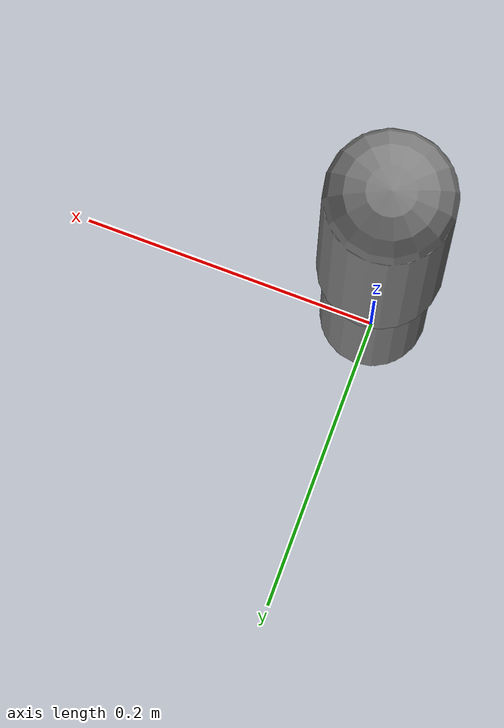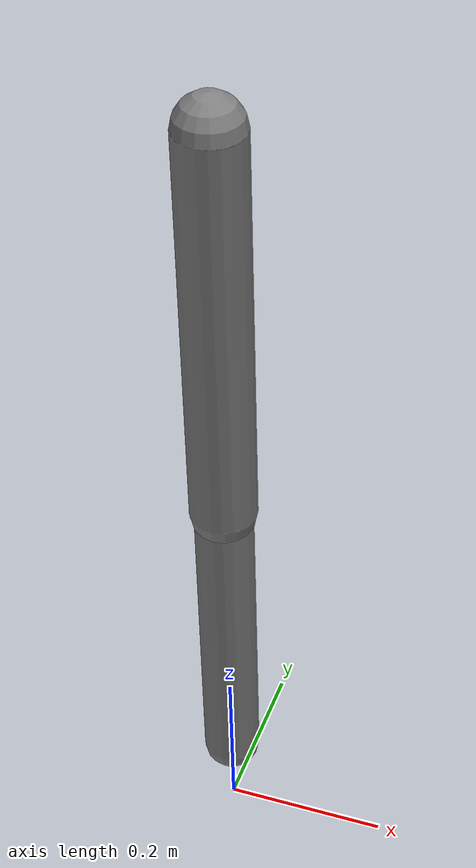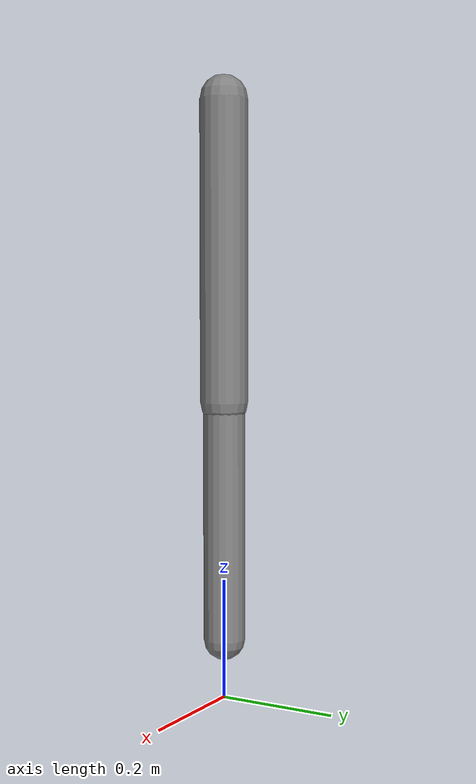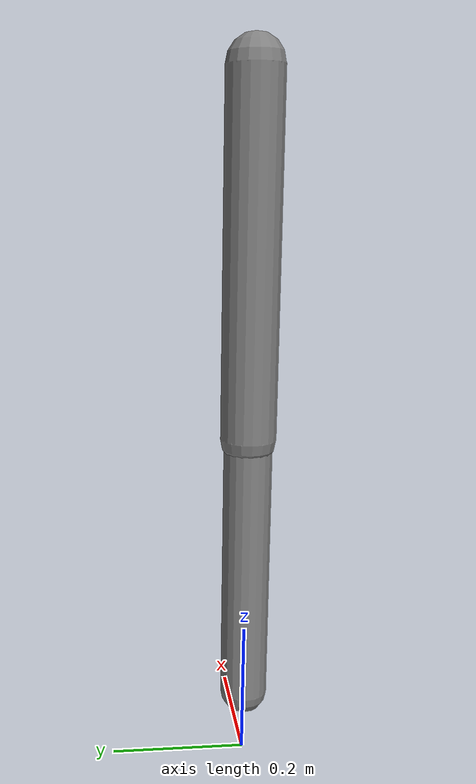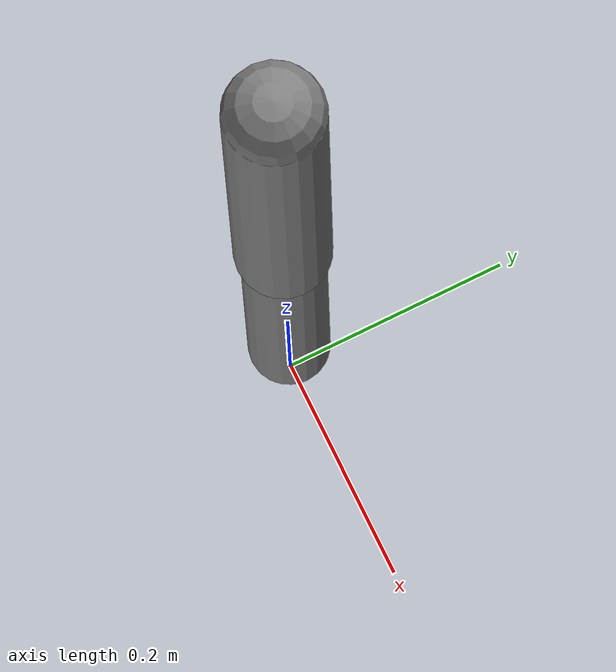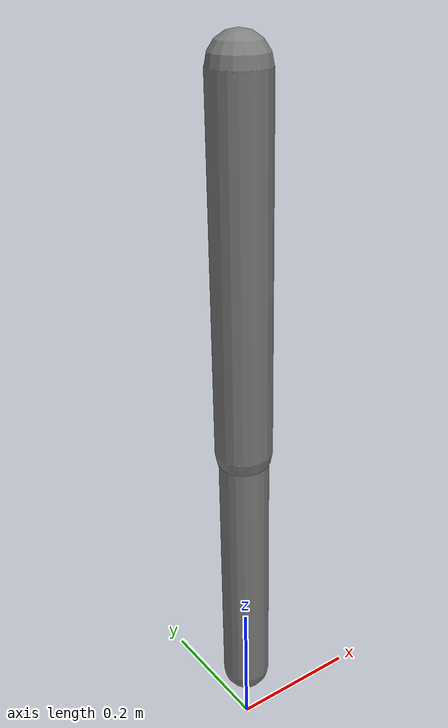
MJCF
<mujoco model="keyframe_arm">
  <compiler angle="degree"/>
  <worldbody>
    <body pos="0 0 1">
      <joint name="j1" axis="0 1 0"/>
      <geom type="capsule" fromto="0 0 0 0 0 -.5" size=".04" mass="1"/>
      <body pos="0 0 -.5">
        <joint name="j2" axis="0 1 0"/>
        <geom type="capsule" fromto="0 0 0 0 0 -.4" size=".035" mass=".7"/>
        <site name="tool" pos="0 0 -.4" size=".02"/>
      </body>
    </body>
  </worldbody>
  <keyframe>
    <key name="home" qpos="0 0"/>
    <key name="reach" time="1" qpos="45 -70"/>
    <key name="fold" time="2" qpos="-30 110"/>
  </keyframe>
</mujoco>
